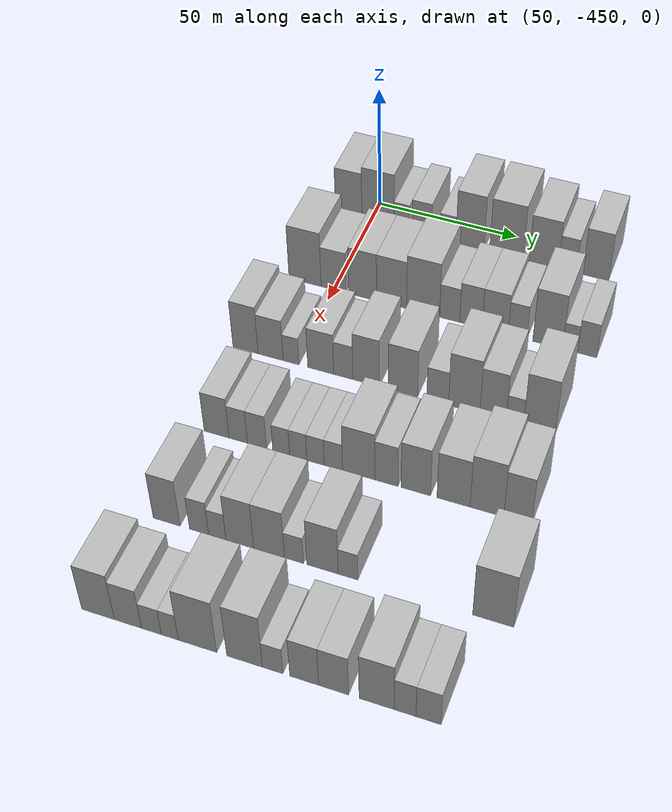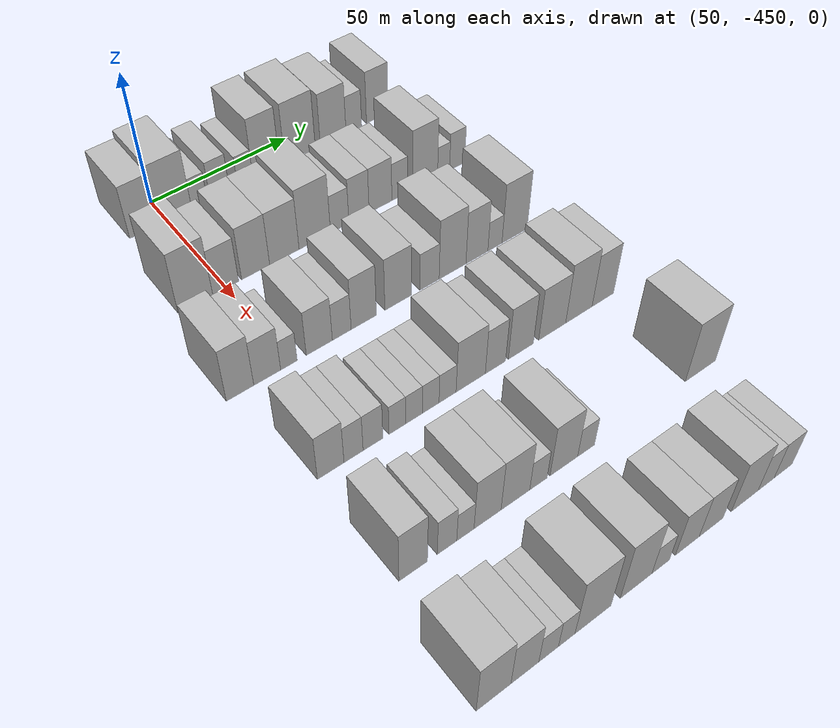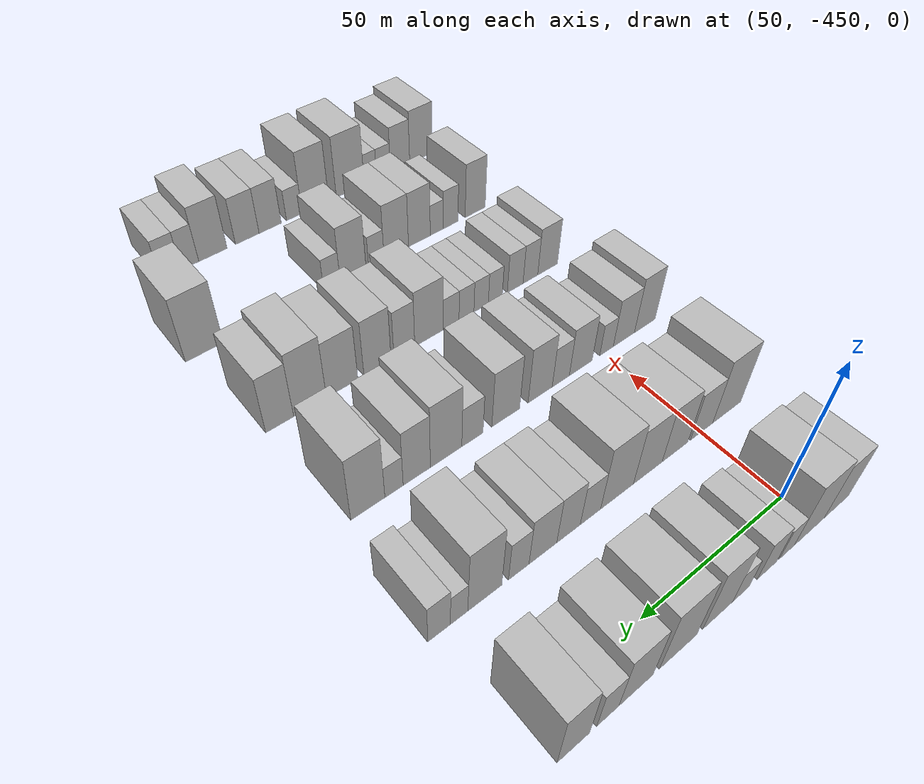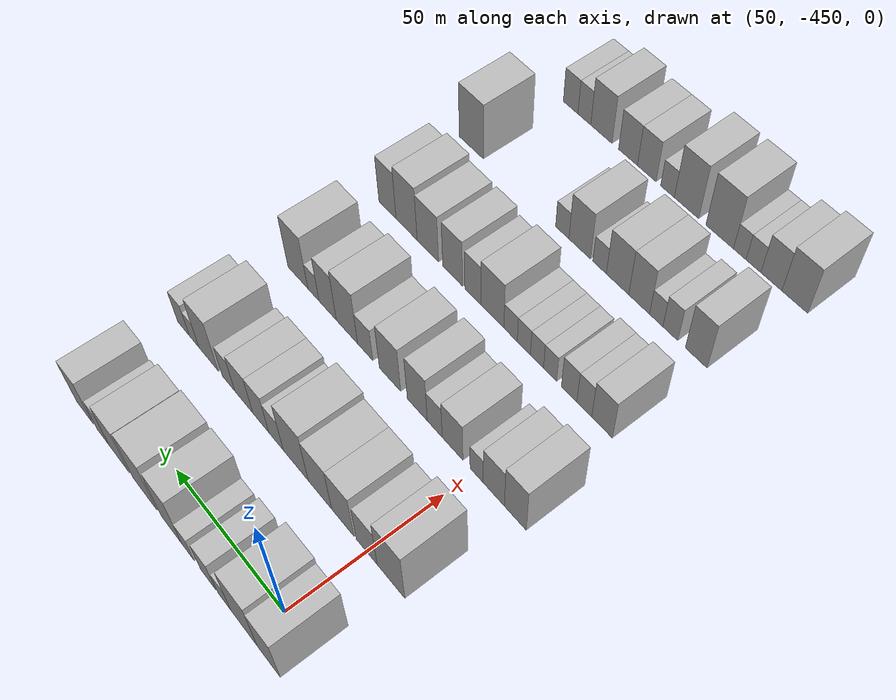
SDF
<sdf version="1.6">
 <world name="default">
  <model name="building_13">
   <static>1</static>
   <pose>50.0000 -457.8716 0 0.000000 0.000000 0.000000</pose>
   <link name="link">
    <pose>0 0 10.50 0 0 0</pose>
    <collision name="collision"><geometry><box><size>20.0000 9.7933 21.0000</size></box></geometry></collision>
    <visual name="visual">
     <cast_shadows>0</cast_shadows>
     <geometry><box><size>20.0000 9.7933 21.0000</size></box></geometry>
     <material>
      <script>
       <uri>model://HANNAS_wall/materials/scripts</uri>
       <uri>model://HANNAS_wall/materials/textures</uri>
       <name>vrc/HANNAS_wall</name>
      </script>
     </material>
    </visual>
   </link>
  </model>
  <model name="building_14">
   <static>1</static>
   <pose>50.0000 -447.1018 0 0.000000 0.000000 0.000000</pose>
   <link name="link">
    <pose>0 0 12.00 0 0 0</pose>
    <collision name="collision"><geometry><box><size>20.0000 11.7461 24.0000</size></box></geometry></collision>
    <visual name="visual">
     <cast_shadows>0</cast_shadows>
     <geometry><box><size>20.0000 11.7461 24.0000</size></box></geometry>
     <material>
      <script>
       <uri>model://HANNAS_wall/materials/scripts</uri>
       <uri>model://HANNAS_wall/materials/textures</uri>
       <name>vrc/HANNAS_wall</name>
      </script>
     </material>
    </visual>
   </link>
  </model>
  <model name="building_15">
   <static>1</static>
   <pose>50.0000 -438.4179 0 0.000000 0.000000 0.000000</pose>
   <link name="link">
    <pose>0 0 6.00 0 0 0</pose>
    <collision name="collision"><geometry><box><size>20.0000 5.6217 12.0000</size></box></geometry></collision>
    <visual name="visual">
     <cast_shadows>0</cast_shadows>
     <geometry><box><size>20.0000 5.6217 12.0000</size></box></geometry>
     <material>
      <script>
       <uri>model://HANNAS_wall/materials/scripts</uri>
       <uri>model://HANNAS_wall/materials/textures</uri>
       <name>vrc/HANNAS_wall</name>
      </script>
     </material>
    </visual>
   </link>
  </model>
  <model name="building_16">
   <static>1</static>
   <pose>50.0000 -431.0832 0 0.000000 0.000000 0.000000</pose>
   <link name="link">
    <pose>0 0 7.50 0 0 0</pose>
    <collision name="collision"><geometry><box><size>20.0000 7.0478 15.0000</size></box></geometry></collision>
    <visual name="visual">
     <cast_shadows>0</cast_shadows>
     <geometry><box><size>20.0000 7.0478 15.0000</size></box></geometry>
     <material>
      <script>
       <uri>model://HANNAS_wall/materials/scripts</uri>
       <uri>model://HANNAS_wall/materials/textures</uri>
       <name>vrc/HANNAS_wall</name>
      </script>
     </material>
    </visual>
   </link>
  </model>
  <model name="building_17">
   <static>1</static>
   <pose>50.0000 -421.6807 0 0.000000 0.000000 0.000000</pose>
   <link name="link">
    <pose>0 0 6.00 0 0 0</pose>
    <collision name="collision"><geometry><box><size>20.0000 5.7572 12.0000</size></box></geometry></collision>
    <visual name="visual">
     <cast_shadows>0</cast_shadows>
     <geometry><box><size>20.0000 5.7572 12.0000</size></box></geometry>
     <material>
      <script>
       <uri>model://HANNAS_wall/materials/scripts</uri>
       <uri>model://HANNAS_wall/materials/textures</uri>
       <name>vrc/HANNAS_wall</name>
      </script>
     </material>
    </visual>
   </link>
  </model>
  <model name="building_18">
   <static>1</static>
   <pose>50.0000 -413.7664 0 0.000000 0.000000 0.000000</pose>
   <link name="link">
    <pose>0 0 12.00 0 0 0</pose>
    <collision name="collision"><geometry><box><size>20.0000 10.0714 24.0000</size></box></geometry></collision>
    <visual name="visual">
     <cast_shadows>0</cast_shadows>
     <geometry><box><size>20.0000 10.0714 24.0000</size></box></geometry>
     <material>
      <script>
       <uri>model://HANNAS_wall/materials/scripts</uri>
       <uri>model://HANNAS_wall/materials/textures</uri>
       <name>vrc/HANNAS_wall</name>
      </script>
     </material>
    </visual>
   </link>
  </model>
  <model name="building_19">
   <static>1</static>
   <pose>50.0000 -400.7920 0 0.000000 0.000000 0.000000</pose>
   <link name="link">
    <pose>0 0 12.00 0 0 0</pose>
    <collision name="collision"><geometry><box><size>20.0000 11.8775 24.0000</size></box></geometry></collision>
    <visual name="visual">
     <cast_shadows>0</cast_shadows>
     <geometry><box><size>20.0000 11.8775 24.0000</size></box></geometry>
     <material>
      <script>
       <uri>model://HANNAS_wall/materials/scripts</uri>
       <uri>model://HANNAS_wall/materials/textures</uri>
       <name>vrc/HANNAS_wall</name>
      </script>
     </material>
    </visual>
   </link>
  </model>
  <model name="building_20">
   <static>1</static>
   <pose>50.0000 -387.7106 0 0.000000 0.000000 0.000000</pose>
   <link name="link">
    <pose>0 0 10.50 0 0 0</pose>
    <collision name="collision"><geometry><box><size>20.0000 10.2854 21.0000</size></box></geometry></collision>
    <visual name="visual">
     <cast_shadows>0</cast_shadows>
     <geometry><box><size>20.0000 10.2854 21.0000</size></box></geometry>
     <material>
      <script>
       <uri>model://HANNAS_wall/materials/scripts</uri>
       <uri>model://HANNAS_wall/materials/textures</uri>
       <name>vrc/HANNAS_wall</name>
      </script>
     </material>
    </visual>
   </link>
  </model>
  <model name="building_21">
   <static>1</static>
   <pose>50.0000 -379.3886 0 0.000000 0.000000 0.000000</pose>
   <link name="link">
    <pose>0 0 7.50 0 0 0</pose>
    <collision name="collision"><geometry><box><size>20.0000 6.3586 15.0000</size></box></geometry></collision>
    <visual name="visual">
     <cast_shadows>0</cast_shadows>
     <geometry><box><size>20.0000 6.3586 15.0000</size></box></geometry>
     <material>
      <script>
       <uri>model://HANNAS_wall/materials/scripts</uri>
       <uri>model://HANNAS_wall/materials/textures</uri>
       <name>vrc/HANNAS_wall</name>
      </script>
     </material>
    </visual>
   </link>
  </model>
  <model name="building_22">
   <static>1</static>
   <pose>50.0000 -369.7194 0 0.000000 0.000000 0.000000</pose>
   <link name="link">
    <pose>0 0 10.50 0 0 0</pose>
    <collision name="collision"><geometry><box><size>20.0000 8.9800 21.0000</size></box></geometry></collision>
    <visual name="visual">
     <cast_shadows>0</cast_shadows>
     <geometry><box><size>20.0000 8.9800 21.0000</size></box></geometry>
     <material>
      <script>
       <uri>model://HANNAS_wall/materials/scripts</uri>
       <uri>model://HANNAS_wall/materials/textures</uri>
       <name>vrc/HANNAS_wall</name>
      </script>
     </material>
    </visual>
   </link>
  </model>
  <model name="building_141">
   <static>1</static>
   <pose>85.0000 -460.1994 0 0.000000 0.000000 0.000000</pose>
   <link name="link">
    <pose>0 0 12.00 0 0 0</pose>
    <collision name="collision"><geometry><box><size>20.0000 11.4522 24.0000</size></box></geometry></collision>
    <visual name="visual">
     <cast_shadows>0</cast_shadows>
     <geometry><box><size>20.0000 11.4522 24.0000</size></box></geometry>
     <material>
      <script>
       <uri>model://HANNAS_wall/materials/scripts</uri>
       <uri>model://HANNAS_wall/materials/textures</uri>
       <name>vrc/HANNAS_wall</name>
      </script>
     </material>
    </visual>
   </link>
  </model>
  <model name="building_142">
   <static>1</static>
   <pose>85.0000 -450.0665 0 0.000000 0.000000 0.000000</pose>
   <link name="link">
    <pose>0 0 9.00 0 0 0</pose>
    <collision name="collision"><geometry><box><size>20.0000 8.8136 18.0000</size></box></geometry></collision>
    <visual name="visual">
     <cast_shadows>0</cast_shadows>
     <geometry><box><size>20.0000 8.8136 18.0000</size></box></geometry>
     <material>
      <script>
       <uri>model://HANNAS_wall/materials/scripts</uri>
       <uri>model://HANNAS_wall/materials/textures</uri>
       <name>vrc/HANNAS_wall</name>
      </script>
     </material>
    </visual>
   </link>
  </model>
  <model name="building_143">
   <static>1</static>
   <pose>85.0000 -439.7883 0 0.000000 0.000000 0.000000</pose>
   <link name="link">
    <pose>0 0 10.50 0 0 0</pose>
    <collision name="collision"><geometry><box><size>20.0000 9.7427 21.0000</size></box></geometry></collision>
    <visual name="visual">
     <cast_shadows>0</cast_shadows>
     <geometry><box><size>20.0000 9.7427 21.0000</size></box></geometry>
     <material>
      <script>
       <uri>model://HANNAS_wall/materials/scripts</uri>
       <uri>model://HANNAS_wall/materials/textures</uri>
       <name>vrc/HANNAS_wall</name>
      </script>
     </material>
    </visual>
   </link>
  </model>
  <model name="building_144">
   <static>1</static>
   <pose>85.0000 -429.6844 0 0.000000 0.000000 0.000000</pose>
   <link name="link">
    <pose>0 0 10.50 0 0 0</pose>
    <collision name="collision"><geometry><box><size>20.0000 10.4652 21.0000</size></box></geometry></collision>
    <visual name="visual">
     <cast_shadows>0</cast_shadows>
     <geometry><box><size>20.0000 10.4652 21.0000</size></box></geometry>
     <material>
      <script>
       <uri>model://HANNAS_wall/materials/scripts</uri>
       <uri>model://HANNAS_wall/materials/textures</uri>
       <name>vrc/HANNAS_wall</name>
      </script>
     </material>
    </visual>
   </link>
  </model>
  <model name="building_145">
   <static>1</static>
   <pose>85.0000 -418.7154 0 0.000000 0.000000 0.000000</pose>
   <link name="link">
    <pose>0 0 12.00 0 0 0</pose>
    <collision name="collision"><geometry><box><size>20.0000 11.4728 24.0000</size></box></geometry></collision>
    <visual name="visual">
     <cast_shadows>0</cast_shadows>
     <geometry><box><size>20.0000 11.4728 24.0000</size></box></geometry>
     <material>
      <script>
       <uri>model://HANNAS_wall/materials/scripts</uri>
       <uri>model://HANNAS_wall/materials/textures</uri>
       <name>vrc/HANNAS_wall</name>
      </script>
     </material>
    </visual>
   </link>
  </model>
  <model name="building_146">
   <static>1</static>
   <pose>85.0000 -409.5506 0 0.000000 0.000000 0.000000</pose>
   <link name="link">
    <pose>0 0 7.50 0 0 0</pose>
    <collision name="collision"><geometry><box><size>20.0000 6.8568 15.0000</size></box></geometry></collision>
    <visual name="visual">
     <cast_shadows>0</cast_shadows>
     <geometry><box><size>20.0000 6.8568 15.0000</size></box></geometry>
     <material>
      <script>
       <uri>model://HANNAS_wall/materials/scripts</uri>
       <uri>model://HANNAS_wall/materials/textures</uri>
       <name>vrc/HANNAS_wall</name>
      </script>
     </material>
    </visual>
   </link>
  </model>
  <model name="building_147">
   <static>1</static>
   <pose>85.0000 -402.2964 0 0.000000 0.000000 0.000000</pose>
   <link name="link">
    <pose>0 0 9.00 0 0 0</pose>
    <collision name="collision"><geometry><box><size>20.0000 7.6515 18.0000</size></box></geometry></collision>
    <visual name="visual">
     <cast_shadows>0</cast_shadows>
     <geometry><box><size>20.0000 7.6515 18.0000</size></box></geometry>
     <material>
      <script>
       <uri>model://HANNAS_wall/materials/scripts</uri>
       <uri>model://HANNAS_wall/materials/textures</uri>
       <name>vrc/HANNAS_wall</name>
      </script>
     </material>
    </visual>
   </link>
  </model>
  <model name="building_148">
   <static>1</static>
   <pose>85.0000 -394.0808 0 0.000000 0.000000 0.000000</pose>
   <link name="link">
    <pose>0 0 9.00 0 0 0</pose>
    <collision name="collision"><geometry><box><size>20.0000 8.7798 18.0000</size></box></geometry></collision>
    <visual name="visual">
     <cast_shadows>0</cast_shadows>
     <geometry><box><size>20.0000 8.7798 18.0000</size></box></geometry>
     <material>
      <script>
       <uri>model://HANNAS_wall/materials/scripts</uri>
       <uri>model://HANNAS_wall/materials/textures</uri>
       <name>vrc/HANNAS_wall</name>
      </script>
     </material>
    </visual>
   </link>
  </model>
  <model name="building_149">
   <static>1</static>
   <pose>85.0000 -386.5686 0 0.000000 0.000000 0.000000</pose>
   <link name="link">
    <pose>0 0 7.50 0 0 0</pose>
    <collision name="collision"><geometry><box><size>20.0000 6.2445 15.0000</size></box></geometry></collision>
    <visual name="visual">
     <cast_shadows>0</cast_shadows>
     <geometry><box><size>20.0000 6.2445 15.0000</size></box></geometry>
     <material>
      <script>
       <uri>model://HANNAS_wall/materials/scripts</uri>
       <uri>model://HANNAS_wall/materials/textures</uri>
       <name>vrc/HANNAS_wall</name>
      </script>
     </material>
    </visual>
   </link>
  </model>
  <model name="building_150">
   <static>1</static>
   <pose>85.0000 -376.4709 0 0.000000 0.000000 0.000000</pose>
   <link name="link">
    <pose>0 0 12.00 0 0 0</pose>
    <collision name="collision"><geometry><box><size>20.0000 9.9509 24.0000</size></box></geometry></collision>
    <visual name="visual">
     <cast_shadows>0</cast_shadows>
     <geometry><box><size>20.0000 9.9509 24.0000</size></box></geometry>
     <material>
      <script>
       <uri>model://HANNAS_wall/materials/scripts</uri>
       <uri>model://HANNAS_wall/materials/textures</uri>
       <name>vrc/HANNAS_wall</name>
      </script>
     </material>
    </visual>
   </link>
  </model>
  <model name="building_151">
   <static>1</static>
   <pose>85.0000 -369.0431 0 0.000000 0.000000 0.000000</pose>
   <link name="link">
    <pose>0 0 6.00 0 0 0</pose>
    <collision name="collision"><geometry><box><size>20.0000 4.9047 12.0000</size></box></geometry></collision>
    <visual name="visual">
     <cast_shadows>0</cast_shadows>
     <geometry><box><size>20.0000 4.9047 12.0000</size></box></geometry>
     <material>
      <script>
       <uri>model://HANNAS_wall/materials/scripts</uri>
       <uri>model://HANNAS_wall/materials/textures</uri>
       <name>vrc/HANNAS_wall</name>
      </script>
     </material>
    </visual>
   </link>
  </model>
  <model name="building_152">
   <static>1</static>
   <pose>85.0000 -363.4586 0 0.000000 0.000000 0.000000</pose>
   <link name="link">
    <pose>0 0 7.50 0 0 0</pose>
    <collision name="collision"><geometry><box><size>20.0000 6.2641 15.0000</size></box></geometry></collision>
    <visual name="visual">
     <cast_shadows>0</cast_shadows>
     <geometry><box><size>20.0000 6.2641 15.0000</size></box></geometry>
     <material>
      <script>
       <uri>model://HANNAS_wall/materials/scripts</uri>
       <uri>model://HANNAS_wall/materials/textures</uri>
       <name>vrc/HANNAS_wall</name>
      </script>
     </material>
    </visual>
   </link>
  </model>
  <model name="building_268">
   <static>1</static>
   <pose>120.0000 -466.7223 0 0.000000 0.000000 0.000000</pose>
   <link name="link">
    <pose>0 0 10.50 0 0 0</pose>
    <collision name="collision"><geometry><box><size>20.0000 8.6788 21.0000</size></box></geometry></collision>
    <visual name="visual">
     <cast_shadows>0</cast_shadows>
     <geometry><box><size>20.0000 8.6788 21.0000</size></box></geometry>
     <material>
      <script>
       <uri>model://HANNAS_wall/materials/scripts</uri>
       <uri>model://HANNAS_wall/materials/textures</uri>
       <name>vrc/HANNAS_wall</name>
      </script>
     </material>
    </visual>
   </link>
  </model>
  <model name="building_269">
   <static>1</static>
   <pose>120.0000 -458.0558 0 0.000000 0.000000 0.000000</pose>
   <link name="link">
    <pose>0 0 9.00 0 0 0</pose>
    <collision name="collision"><geometry><box><size>20.0000 8.6541 18.0000</size></box></geometry></collision>
    <visual name="visual">
     <cast_shadows>0</cast_shadows>
     <geometry><box><size>20.0000 8.6541 18.0000</size></box></geometry>
     <material>
      <script>
       <uri>model://HANNAS_wall/materials/scripts</uri>
       <uri>model://HANNAS_wall/materials/textures</uri>
       <name>vrc/HANNAS_wall</name>
      </script>
     </material>
    </visual>
   </link>
  </model>
  <model name="building_270">
   <static>1</static>
   <pose>120.0000 -451.0318 0 0.000000 0.000000 0.000000</pose>
   <link name="link">
    <pose>0 0 6.00 0 0 0</pose>
    <collision name="collision"><geometry><box><size>20.0000 5.3940 12.0000</size></box></geometry></collision>
    <visual name="visual">
     <cast_shadows>0</cast_shadows>
     <geometry><box><size>20.0000 5.3940 12.0000</size></box></geometry>
     <material>
      <script>
       <uri>model://HANNAS_wall/materials/scripts</uri>
       <uri>model://HANNAS_wall/materials/textures</uri>
       <name>vrc/HANNAS_wall</name>
      </script>
     </material>
    </visual>
   </link>
  </model>
  <model name="building_271">
   <static>1</static>
   <pose>120.0000 -440.9353 0 0.000000 0.000000 0.000000</pose>
   <link name="link">
    <pose>0 0 9.00 0 0 0</pose>
    <collision name="collision"><geometry><box><size>20.0000 8.7991 18.0000</size></box></geometry></collision>
    <visual name="visual">
     <cast_shadows>0</cast_shadows>
     <geometry><box><size>20.0000 8.7991 18.0000</size></box></geometry>
     <material>
      <script>
       <uri>model://HANNAS_wall/materials/scripts</uri>
       <uri>model://HANNAS_wall/materials/textures</uri>
       <name>vrc/HANNAS_wall</name>
      </script>
     </material>
    </visual>
   </link>
  </model>
  <model name="building_272">
   <static>1</static>
   <pose>120.0000 -433.3121 0 0.000000 0.000000 0.000000</pose>
   <link name="link">
    <pose>0 0 7.50 0 0 0</pose>
    <collision name="collision"><geometry><box><size>20.0000 6.4473 15.0000</size></box></geometry></collision>
    <visual name="visual">
     <cast_shadows>0</cast_shadows>
     <geometry><box><size>20.0000 6.4473 15.0000</size></box></geometry>
     <material>
      <script>
       <uri>model://HANNAS_wall/materials/scripts</uri>
       <uri>model://HANNAS_wall/materials/textures</uri>
       <name>vrc/HANNAS_wall</name>
      </script>
     </material>
    </visual>
   </link>
  </model>
  <model name="building_273">
   <static>1</static>
   <pose>120.0000 -425.6830 0 0.000000 0.000000 0.000000</pose>
   <link name="link">
    <pose>0 0 10.50 0 0 0</pose>
    <collision name="collision"><geometry><box><size>20.0000 8.8109 21.0000</size></box></geometry></collision>
    <visual name="visual">
     <cast_shadows>0</cast_shadows>
     <geometry><box><size>20.0000 8.8109 21.0000</size></box></geometry>
     <material>
      <script>
       <uri>model://HANNAS_wall/materials/scripts</uri>
       <uri>model://HANNAS_wall/materials/textures</uri>
       <name>vrc/HANNAS_wall</name>
      </script>
     </material>
    </visual>
   </link>
  </model>
  <model name="building_274">
   <static>1</static>
   <pose>120.0000 -413.4282 0 0.000000 0.000000 0.000000</pose>
   <link name="link">
    <pose>0 0 10.50 0 0 0</pose>
    <collision name="collision"><geometry><box><size>20.0000 9.6988 21.0000</size></box></geometry></collision>
    <visual name="visual">
     <cast_shadows>0</cast_shadows>
     <geometry><box><size>20.0000 9.6988 21.0000</size></box></geometry>
     <material>
      <script>
       <uri>model://HANNAS_wall/materials/scripts</uri>
       <uri>model://HANNAS_wall/materials/textures</uri>
       <name>vrc/HANNAS_wall</name>
      </script>
     </material>
    </visual>
   </link>
  </model>
  <model name="building_275">
   <static>1</static>
   <pose>120.0000 -402.0320 0 0.000000 0.000000 0.000000</pose>
   <link name="link">
    <pose>0 0 7.50 0 0 0</pose>
    <collision name="collision"><geometry><box><size>20.0000 7.0936 15.0000</size></box></geometry></collision>
    <visual name="visual">
     <cast_shadows>0</cast_shadows>
     <geometry><box><size>20.0000 7.0936 15.0000</size></box></geometry>
     <material>
      <script>
       <uri>model://HANNAS_wall/materials/scripts</uri>
       <uri>model://HANNAS_wall/materials/textures</uri>
       <name>vrc/HANNAS_wall</name>
      </script>
     </material>
    </visual>
   </link>
  </model>
  <model name="building_276">
   <static>1</static>
   <pose>120.0000 -393.4062 0 0.000000 0.000000 0.000000</pose>
   <link name="link">
    <pose>0 0 12.00 0 0 0</pose>
    <collision name="collision"><geometry><box><size>20.0000 10.1579 24.0000</size></box></geometry></collision>
    <visual name="visual">
     <cast_shadows>0</cast_shadows>
     <geometry><box><size>20.0000 10.1579 24.0000</size></box></geometry>
     <material>
      <script>
       <uri>model://HANNAS_wall/materials/scripts</uri>
       <uri>model://HANNAS_wall/materials/textures</uri>
       <name>vrc/HANNAS_wall</name>
      </script>
     </material>
    </visual>
   </link>
  </model>
  <model name="building_277">
   <static>1</static>
   <pose>120.0000 -384.0932 0 0.000000 0.000000 0.000000</pose>
   <link name="link">
    <pose>0 0 10.50 0 0 0</pose>
    <collision name="collision"><geometry><box><size>20.0000 8.4682 21.0000</size></box></geometry></collision>
    <visual name="visual">
     <cast_shadows>0</cast_shadows>
     <geometry><box><size>20.0000 8.4682 21.0000</size></box></geometry>
     <material>
      <script>
       <uri>model://HANNAS_wall/materials/scripts</uri>
       <uri>model://HANNAS_wall/materials/textures</uri>
       <name>vrc/HANNAS_wall</name>
      </script>
     </material>
    </visual>
   </link>
  </model>
  <model name="building_278">
   <static>1</static>
   <pose>120.0000 -377.0903 0 0.000000 0.000000 0.000000</pose>
   <link name="link">
    <pose>0 0 6.00 0 0 0</pose>
    <collision name="collision"><geometry><box><size>20.0000 5.5376 12.0000</size></box></geometry></collision>
    <visual name="visual">
     <cast_shadows>0</cast_shadows>
     <geometry><box><size>20.0000 5.5376 12.0000</size></box></geometry>
     <material>
      <script>
       <uri>model://HANNAS_wall/materials/scripts</uri>
       <uri>model://HANNAS_wall/materials/textures</uri>
       <name>vrc/HANNAS_wall</name>
      </script>
     </material>
    </visual>
   </link>
  </model>
  <model name="building_279">
   <static>1</static>
   <pose>120.0000 -369.2948 0 0.000000 0.000000 0.000000</pose>
   <link name="link">
    <pose>0 0 12.00 0 0 0</pose>
    <collision name="collision"><geometry><box><size>20.0000 10.0533 24.0000</size></box></geometry></collision>
    <visual name="visual">
     <cast_shadows>0</cast_shadows>
     <geometry><box><size>20.0000 10.0533 24.0000</size></box></geometry>
     <material>
      <script>
       <uri>model://HANNAS_wall/materials/scripts</uri>
       <uri>model://HANNAS_wall/materials/textures</uri>
       <name>vrc/HANNAS_wall</name>
      </script>
     </material>
    </visual>
   </link>
  </model>
  <model name="building_394">
   <static>1</static>
   <pose>155.0000 -461.2641 0 0.000000 0.000000 0.000000</pose>
   <link name="link">
    <pose>0 0 9.00 0 0 0</pose>
    <collision name="collision"><geometry><box><size>20.0000 8.2466 18.0000</size></box></geometry></collision>
    <visual name="visual">
     <cast_shadows>0</cast_shadows>
     <geometry><box><size>20.0000 8.2466 18.0000</size></box></geometry>
     <material>
      <script>
       <uri>model://HANNAS_wall/materials/scripts</uri>
       <uri>model://HANNAS_wall/materials/textures</uri>
       <name>vrc/HANNAS_wall</name>
      </script>
     </material>
    </visual>
   </link>
  </model>
  <model name="building_395">
   <static>1</static>
   <pose>155.0000 -454.1316 0 0.000000 0.000000 0.000000</pose>
   <link name="link">
    <pose>0 0 7.50 0 0 0</pose>
    <collision name="collision"><geometry><box><size>20.0000 6.0183 15.0000</size></box></geometry></collision>
    <visual name="visual">
     <cast_shadows>0</cast_shadows>
     <geometry><box><size>20.0000 6.0183 15.0000</size></box></geometry>
     <material>
      <script>
       <uri>model://HANNAS_wall/materials/scripts</uri>
       <uri>model://HANNAS_wall/materials/textures</uri>
       <name>vrc/HANNAS_wall</name>
      </script>
     </material>
    </visual>
   </link>
  </model>
  <model name="building_396">
   <static>1</static>
   <pose>155.0000 -447.9561 0 0.000000 0.000000 0.000000</pose>
   <link name="link">
    <pose>0 0 7.50 0 0 0</pose>
    <collision name="collision"><geometry><box><size>20.0000 6.3326 15.0000</size></box></geometry></collision>
    <visual name="visual">
     <cast_shadows>0</cast_shadows>
     <geometry><box><size>20.0000 6.3326 15.0000</size></box></geometry>
     <material>
      <script>
       <uri>model://HANNAS_wall/materials/scripts</uri>
       <uri>model://HANNAS_wall/materials/textures</uri>
       <name>vrc/HANNAS_wall</name>
      </script>
     </material>
    </visual>
   </link>
  </model>
  <model name="building_397">
   <static>1</static>
   <pose>155.0000 -440.0539 0 0.000000 0.000000 0.000000</pose>
   <link name="link">
    <pose>0 0 6.00 0 0 0</pose>
    <collision name="collision"><geometry><box><size>20.0000 5.4719 12.0000</size></box></geometry></collision>
    <visual name="visual">
     <cast_shadows>0</cast_shadows>
     <geometry><box><size>20.0000 5.4719 12.0000</size></box></geometry>
     <material>
      <script>
       <uri>model://HANNAS_wall/materials/scripts</uri>
       <uri>model://HANNAS_wall/materials/textures</uri>
       <name>vrc/HANNAS_wall</name>
      </script>
     </material>
    </visual>
   </link>
  </model>
  <model name="building_398">
   <static>1</static>
   <pose>155.0000 -434.5437 0 0.000000 0.000000 0.000000</pose>
   <link name="link">
    <pose>0 0 6.00 0 0 0</pose>
    <collision name="collision"><geometry><box><size>20.0000 5.5483 12.0000</size></box></geometry></collision>
    <visual name="visual">
     <cast_shadows>0</cast_shadows>
     <geometry><box><size>20.0000 5.5483 12.0000</size></box></geometry>
     <material>
      <script>
       <uri>model://HANNAS_wall/materials/scripts</uri>
       <uri>model://HANNAS_wall/materials/textures</uri>
       <name>vrc/HANNAS_wall</name>
      </script>
     </material>
    </visual>
   </link>
  </model>
  <model name="building_399">
   <static>1</static>
   <pose>155.0000 -428.9481 0 0.000000 0.000000 0.000000</pose>
   <link name="link">
    <pose>0 0 6.00 0 0 0</pose>
    <collision name="collision"><geometry><box><size>20.0000 5.6429 12.0000</size></box></geometry></collision>
    <visual name="visual">
     <cast_shadows>0</cast_shadows>
     <geometry><box><size>20.0000 5.6429 12.0000</size></box></geometry>
     <material>
      <script>
       <uri>model://HANNAS_wall/materials/scripts</uri>
       <uri>model://HANNAS_wall/materials/textures</uri>
       <name>vrc/HANNAS_wall</name>
      </script>
     </material>
    </visual>
   </link>
  </model>
  <model name="building_400">
   <static>1</static>
   <pose>155.0000 -423.2051 0 0.000000 0.000000 0.000000</pose>
   <link name="link">
    <pose>0 0 6.00 0 0 0</pose>
    <collision name="collision"><geometry><box><size>20.0000 5.8431 12.0000</size></box></geometry></collision>
    <visual name="visual">
     <cast_shadows>0</cast_shadows>
     <geometry><box><size>20.0000 5.8431 12.0000</size></box></geometry>
     <material>
      <script>
       <uri>model://HANNAS_wall/materials/scripts</uri>
       <uri>model://HANNAS_wall/materials/textures</uri>
       <name>vrc/HANNAS_wall</name>
      </script>
     </material>
    </visual>
   </link>
  </model>
  <model name="building_401">
   <static>1</static>
   <pose>155.0000 -415.1552 0 0.000000 0.000000 0.000000</pose>
   <link name="link">
    <pose>0 0 10.50 0 0 0</pose>
    <collision name="collision"><geometry><box><size>20.0000 10.2568 21.0000</size></box></geometry></collision>
    <visual name="visual">
     <cast_shadows>0</cast_shadows>
     <geometry><box><size>20.0000 10.2568 21.0000</size></box></geometry>
     <material>
      <script>
       <uri>model://HANNAS_wall/materials/scripts</uri>
       <uri>model://HANNAS_wall/materials/textures</uri>
       <name>vrc/HANNAS_wall</name>
      </script>
     </material>
    </visual>
   </link>
  </model>
  <model name="building_402">
   <static>1</static>
   <pose>155.0000 -406.3943 0 0.000000 0.000000 0.000000</pose>
   <link name="link">
    <pose>0 0 9.00 0 0 0</pose>
    <collision name="collision"><geometry><box><size>20.0000 7.2649 18.0000</size></box></geometry></collision>
    <visual name="visual">
     <cast_shadows>0</cast_shadows>
     <geometry><box><size>20.0000 7.2649 18.0000</size></box></geometry>
     <material>
      <script>
       <uri>model://HANNAS_wall/materials/scripts</uri>
       <uri>model://HANNAS_wall/materials/textures</uri>
       <name>vrc/HANNAS_wall</name>
      </script>
     </material>
    </visual>
   </link>
  </model>
  <model name="building_403">
   <static>1</static>
   <pose>155.0000 -397.1675 0 0.000000 0.000000 0.000000</pose>
   <link name="link">
    <pose>0 0 10.50 0 0 0</pose>
    <collision name="collision"><geometry><box><size>20.0000 9.1889 21.0000</size></box></geometry></collision>
    <visual name="visual">
     <cast_shadows>0</cast_shadows>
     <geometry><box><size>20.0000 9.1889 21.0000</size></box></geometry>
     <material>
      <script>
       <uri>model://HANNAS_wall/materials/scripts</uri>
       <uri>model://HANNAS_wall/materials/textures</uri>
       <name>vrc/HANNAS_wall</name>
      </script>
     </material>
    </visual>
   </link>
  </model>
  <model name="building_404">
   <static>1</static>
   <pose>155.0000 -385.4697 0 0.000000 0.000000 0.000000</pose>
   <link name="link">
    <pose>0 0 10.50 0 0 0</pose>
    <collision name="collision"><geometry><box><size>20.0000 10.2068 21.0000</size></box></geometry></collision>
    <visual name="visual">
     <cast_shadows>0</cast_shadows>
     <geometry><box><size>20.0000 10.2068 21.0000</size></box></geometry>
     <material>
      <script>
       <uri>model://HANNAS_wall/materials/scripts</uri>
       <uri>model://HANNAS_wall/materials/textures</uri>
       <name>vrc/HANNAS_wall</name>
      </script>
     </material>
    </visual>
   </link>
  </model>
  <model name="building_405">
   <static>1</static>
   <pose>155.0000 -375.2336 0 0.000000 0.000000 0.000000</pose>
   <link name="link">
    <pose>0 0 12.00 0 0 0</pose>
    <collision name="collision"><geometry><box><size>20.0000 10.2653 24.0000</size></box></geometry></collision>
    <visual name="visual">
     <cast_shadows>0</cast_shadows>
     <geometry><box><size>20.0000 10.2653 24.0000</size></box></geometry>
     <material>
      <script>
       <uri>model://HANNAS_wall/materials/scripts</uri>
       <uri>model://HANNAS_wall/materials/textures</uri>
       <name>vrc/HANNAS_wall</name>
      </script>
     </material>
    </visual>
   </link>
  </model>
  <model name="building_406">
   <static>1</static>
   <pose>155.0000 -365.8576 0 0.000000 0.000000 0.000000</pose>
   <link name="link">
    <pose>0 0 10.50 0 0 0</pose>
    <collision name="collision"><geometry><box><size>20.0000 8.4866 21.0000</size></box></geometry></collision>
    <visual name="visual">
     <cast_shadows>0</cast_shadows>
     <geometry><box><size>20.0000 8.4866 21.0000</size></box></geometry>
     <material>
      <script>
       <uri>model://HANNAS_wall/materials/scripts</uri>
       <uri>model://HANNAS_wall/materials/textures</uri>
       <name>vrc/HANNAS_wall</name>
      </script>
     </material>
    </visual>
   </link>
  </model>
  <model name="building_518">
   <static>1</static>
   <pose>190.0000 -461.5701 0 0.000000 0.000000 0.000000</pose>
   <link name="link">
    <pose>0 0 10.50 0 0 0</pose>
    <collision name="collision"><geometry><box><size>20.0000 8.5688 21.0000</size></box></geometry></collision>
    <visual name="visual">
     <cast_shadows>0</cast_shadows>
     <geometry><box><size>20.0000 8.5688 21.0000</size></box></geometry>
     <material>
      <script>
       <uri>model://HANNAS_wall/materials/scripts</uri>
       <uri>model://HANNAS_wall/materials/textures</uri>
       <name>vrc/HANNAS_wall</name>
      </script>
     </material>
    </visual>
   </link>
  </model>
  <model name="building_519">
   <static>1</static>
   <pose>190.0000 -451.2682 0 0.000000 0.000000 0.000000</pose>
   <link name="link">
    <pose>0 0 7.50 0 0 0</pose>
    <collision name="collision"><geometry><box><size>20.0000 6.0349 15.0000</size></box></geometry></collision>
    <visual name="visual">
     <cast_shadows>0</cast_shadows>
     <geometry><box><size>20.0000 6.0349 15.0000</size></box></geometry>
     <material>
      <script>
       <uri>model://HANNAS_wall/materials/scripts</uri>
       <uri>model://HANNAS_wall/materials/textures</uri>
       <name>vrc/HANNAS_wall</name>
      </script>
     </material>
    </visual>
   </link>
  </model>
  <model name="building_520">
   <static>1</static>
   <pose>190.0000 -445.5391 0 0.000000 0.000000 0.000000</pose>
   <link name="link">
    <pose>0 0 6.00 0 0 0</pose>
    <collision name="collision"><geometry><box><size>20.0000 5.4234 12.0000</size></box></geometry></collision>
    <visual name="visual">
     <cast_shadows>0</cast_shadows>
     <geometry><box><size>20.0000 5.4234 12.0000</size></box></geometry>
     <material>
      <script>
       <uri>model://HANNAS_wall/materials/scripts</uri>
       <uri>model://HANNAS_wall/materials/textures</uri>
       <name>vrc/HANNAS_wall</name>
      </script>
     </material>
    </visual>
   </link>
  </model>
  <model name="building_521">
   <static>1</static>
   <pose>190.0000 -438.4844 0 0.000000 0.000000 0.000000</pose>
   <link name="link">
    <pose>0 0 10.50 0 0 0</pose>
    <collision name="collision"><geometry><box><size>20.0000 8.6859 21.0000</size></box></geometry></collision>
    <visual name="visual">
     <cast_shadows>0</cast_shadows>
     <geometry><box><size>20.0000 8.6859 21.0000</size></box></geometry>
     <material>
      <script>
       <uri>model://HANNAS_wall/materials/scripts</uri>
       <uri>model://HANNAS_wall/materials/textures</uri>
       <name>vrc/HANNAS_wall</name>
      </script>
     </material>
    </visual>
   </link>
  </model>
  <model name="building_522">
   <static>1</static>
   <pose>190.0000 -429.4037 0 0.000000 0.000000 0.000000</pose>
   <link name="link">
    <pose>0 0 10.50 0 0 0</pose>
    <collision name="collision"><geometry><box><size>20.0000 9.4756 21.0000</size></box></geometry></collision>
    <visual name="visual">
     <cast_shadows>0</cast_shadows>
     <geometry><box><size>20.0000 9.4756 21.0000</size></box></geometry>
     <material>
      <script>
       <uri>model://HANNAS_wall/materials/scripts</uri>
       <uri>model://HANNAS_wall/materials/textures</uri>
       <name>vrc/HANNAS_wall</name>
      </script>
     </material>
    </visual>
   </link>
  </model>
  <model name="building_523">
   <static>1</static>
   <pose>190.0000 -421.7425 0 0.000000 0.000000 0.000000</pose>
   <link name="link">
    <pose>0 0 6.00 0 0 0</pose>
    <collision name="collision"><geometry><box><size>20.0000 5.8467 12.0000</size></box></geometry></collision>
    <visual name="visual">
     <cast_shadows>0</cast_shadows>
     <geometry><box><size>20.0000 5.8467 12.0000</size></box></geometry>
     <material>
      <script>
       <uri>model://HANNAS_wall/materials/scripts</uri>
       <uri>model://HANNAS_wall/materials/textures</uri>
       <name>vrc/HANNAS_wall</name>
      </script>
     </material>
    </visual>
   </link>
  </model>
  <model name="building_524">
   <static>1</static>
   <pose>190.0000 -413.0621 0 0.000000 0.000000 0.000000</pose>
   <link name="link">
    <pose>0 0 10.50 0 0 0</pose>
    <collision name="collision"><geometry><box><size>20.0000 9.5142 21.0000</size></box></geometry></collision>
    <visual name="visual">
     <cast_shadows>0</cast_shadows>
     <geometry><box><size>20.0000 9.5142 21.0000</size></box></geometry>
     <material>
      <script>
       <uri>model://HANNAS_wall/materials/scripts</uri>
       <uri>model://HANNAS_wall/materials/textures</uri>
       <name>vrc/HANNAS_wall</name>
      </script>
     </material>
    </visual>
   </link>
  </model>
  <model name="building_525">
   <static>1</static>
   <pose>190.0000 -405.3374 0 0.000000 0.000000 0.000000</pose>
   <link name="link">
    <pose>0 0 6.00 0 0 0</pose>
    <collision name="collision"><geometry><box><size>20.0000 5.9353 12.0000</size></box></geometry></collision>
    <visual name="visual">
     <cast_shadows>0</cast_shadows>
     <geometry><box><size>20.0000 5.9353 12.0000</size></box></geometry>
     <material>
      <script>
       <uri>model://HANNAS_wall/materials/scripts</uri>
       <uri>model://HANNAS_wall/materials/textures</uri>
       <name>vrc/HANNAS_wall</name>
      </script>
     </material>
    </visual>
   </link>
  </model>
  <model name="building_526">
   <static>1</static>
   <pose>190.0000 -362.5958 0 0.000000 0.000000 0.000000</pose>
   <link name="link">
    <pose>0 0 12.00 0 0 0</pose>
    <collision name="collision"><geometry><box><size>20.0000 11.8493 24.0000</size></box></geometry></collision>
    <visual name="visual">
     <cast_shadows>0</cast_shadows>
     <geometry><box><size>20.0000 11.8493 24.0000</size></box></geometry>
     <material>
      <script>
       <uri>model://HANNAS_wall/materials/scripts</uri>
       <uri>model://HANNAS_wall/materials/textures</uri>
       <name>vrc/HANNAS_wall</name>
      </script>
     </material>
    </visual>
   </link>
  </model>
  <model name="building_641">
   <static>1</static>
   <pose>225.0000 -465.9938 0 0.000000 0.000000 0.000000</pose>
   <link name="link">
    <pose>0 0 10.50 0 0 0</pose>
    <collision name="collision"><geometry><box><size>20.0000 10.0164 21.0000</size></box></geometry></collision>
    <visual name="visual">
     <cast_shadows>0</cast_shadows>
     <geometry><box><size>20.0000 10.0164 21.0000</size></box></geometry>
     <material>
      <script>
       <uri>model://HANNAS_wall/materials/scripts</uri>
       <uri>model://HANNAS_wall/materials/textures</uri>
       <name>vrc/HANNAS_wall</name>
      </script>
     </material>
    </visual>
   </link>
  </model>
  <model name="building_642">
   <static>1</static>
   <pose>225.0000 -456.8442 0 0.000000 0.000000 0.000000</pose>
   <link name="link">
    <pose>0 0 9.00 0 0 0</pose>
    <collision name="collision"><geometry><box><size>20.0000 8.2829 18.0000</size></box></geometry></collision>
    <visual name="visual">
     <cast_shadows>0</cast_shadows>
     <geometry><box><size>20.0000 8.2829 18.0000</size></box></geometry>
     <material>
      <script>
       <uri>model://HANNAS_wall/materials/scripts</uri>
       <uri>model://HANNAS_wall/materials/textures</uri>
       <name>vrc/HANNAS_wall</name>
      </script>
     </material>
    </visual>
   </link>
  </model>
  <model name="building_643">
   <static>1</static>
   <pose>225.0000 -449.7284 0 0.000000 0.000000 0.000000</pose>
   <link name="link">
    <pose>0 0 6.00 0 0 0</pose>
    <collision name="collision"><geometry><box><size>20.0000 5.9487 12.0000</size></box></geometry></collision>
    <visual name="visual">
     <cast_shadows>0</cast_shadows>
     <geometry><box><size>20.0000 5.9487 12.0000</size></box></geometry>
     <material>
      <script>
       <uri>model://HANNAS_wall/materials/scripts</uri>
       <uri>model://HANNAS_wall/materials/textures</uri>
       <name>vrc/HANNAS_wall</name>
      </script>
     </material>
    </visual>
   </link>
  </model>
  <model name="building_644">
   <static>1</static>
   <pose>225.0000 -444.1958 0 0.000000 0.000000 0.000000</pose>
   <link name="link">
    <pose>0 0 6.00 0 0 0</pose>
    <collision name="collision"><geometry><box><size>20.0000 5.1165 12.0000</size></box></geometry></collision>
    <visual name="visual">
     <cast_shadows>0</cast_shadows>
     <geometry><box><size>20.0000 5.1165 12.0000</size></box></geometry>
     <material>
      <script>
       <uri>model://HANNAS_wall/materials/scripts</uri>
       <uri>model://HANNAS_wall/materials/textures</uri>
       <name>vrc/HANNAS_wall</name>
      </script>
     </material>
    </visual>
   </link>
  </model>
  <model name="building_645">
   <static>1</static>
   <pose>225.0000 -435.9252 0 0.000000 0.000000 0.000000</pose>
   <link name="link">
    <pose>0 0 12.00 0 0 0</pose>
    <collision name="collision"><geometry><box><size>20.0000 11.4247 24.0000</size></box></geometry></collision>
    <visual name="visual">
     <cast_shadows>0</cast_shadows>
     <geometry><box><size>20.0000 11.4247 24.0000</size></box></geometry>
     <material>
      <script>
       <uri>model://HANNAS_wall/materials/scripts</uri>
       <uri>model://HANNAS_wall/materials/textures</uri>
       <name>vrc/HANNAS_wall</name>
      </script>
     </material>
    </visual>
   </link>
  </model>
  <model name="building_646">
   <static>1</static>
   <pose>225.0000 -421.9942 0 0.000000 0.000000 0.000000</pose>
   <link name="link">
    <pose>0 0 12.00 0 0 0</pose>
    <collision name="collision"><geometry><box><size>20.0000 10.4373 24.0000</size></box></geometry></collision>
    <visual name="visual">
     <cast_shadows>0</cast_shadows>
     <geometry><box><size>20.0000 10.4373 24.0000</size></box></geometry>
     <material>
      <script>
       <uri>model://HANNAS_wall/materials/scripts</uri>
       <uri>model://HANNAS_wall/materials/textures</uri>
       <name>vrc/HANNAS_wall</name>
      </script>
     </material>
    </visual>
   </link>
  </model>
  <model name="building_647">
   <static>1</static>
   <pose>225.0000 -413.7933 0 0.000000 0.000000 0.000000</pose>
   <link name="link">
    <pose>0 0 6.00 0 0 0</pose>
    <collision name="collision"><geometry><box><size>20.0000 5.9646 12.0000</size></box></geometry></collision>
    <visual name="visual">
     <cast_shadows>0</cast_shadows>
     <geometry><box><size>20.0000 5.9646 12.0000</size></box></geometry>
     <material>
      <script>
       <uri>model://HANNAS_wall/materials/scripts</uri>
       <uri>model://HANNAS_wall/materials/textures</uri>
       <name>vrc/HANNAS_wall</name>
      </script>
     </material>
    </visual>
   </link>
  </model>
  <model name="building_648">
   <static>1</static>
   <pose>225.0000 -404.6728 0 0.000000 0.000000 0.000000</pose>
   <link name="link">
    <pose>0 0 9.00 0 0 0</pose>
    <collision name="collision"><geometry><box><size>20.0000 8.2763 18.0000</size></box></geometry></collision>
    <visual name="visual">
     <cast_shadows>0</cast_shadows>
     <geometry><box><size>20.0000 8.2763 18.0000</size></box></geometry>
     <material>
      <script>
       <uri>model://HANNAS_wall/materials/scripts</uri>
       <uri>model://HANNAS_wall/materials/textures</uri>
       <name>vrc/HANNAS_wall</name>
      </script>
     </material>
    </visual>
   </link>
  </model>
  <model name="building_649">
   <static>1</static>
   <pose>225.0000 -396.2634 0 0.000000 0.000000 0.000000</pose>
   <link name="link">
    <pose>0 0 9.00 0 0 0</pose>
    <collision name="collision"><geometry><box><size>20.0000 8.5426 18.0000</size></box></geometry></collision>
    <visual name="visual">
     <cast_shadows>0</cast_shadows>
     <geometry><box><size>20.0000 8.5426 18.0000</size></box></geometry>
     <material>
      <script>
       <uri>model://HANNAS_wall/materials/scripts</uri>
       <uri>model://HANNAS_wall/materials/textures</uri>
       <name>vrc/HANNAS_wall</name>
      </script>
     </material>
    </visual>
   </link>
  </model>
  <model name="building_650">
   <static>1</static>
   <pose>225.0000 -384.0573 0 0.000000 0.000000 0.000000</pose>
   <link name="link">
    <pose>0 0 10.50 0 0 0</pose>
    <collision name="collision"><geometry><box><size>20.0000 9.8695 21.0000</size></box></geometry></collision>
    <visual name="visual">
     <cast_shadows>0</cast_shadows>
     <geometry><box><size>20.0000 9.8695 21.0000</size></box></geometry>
     <material>
      <script>
       <uri>model://HANNAS_wall/materials/scripts</uri>
       <uri>model://HANNAS_wall/materials/textures</uri>
       <name>vrc/HANNAS_wall</name>
      </script>
     </material>
    </visual>
   </link>
  </model>
  <model name="building_651">
   <static>1</static>
   <pose>225.0000 -376.0983 0 0.000000 0.000000 0.000000</pose>
   <link name="link">
    <pose>0 0 7.50 0 0 0</pose>
    <collision name="collision"><geometry><box><size>20.0000 6.0485 15.0000</size></box></geometry></collision>
    <visual name="visual">
     <cast_shadows>0</cast_shadows>
     <geometry><box><size>20.0000 6.0485 15.0000</size></box></geometry>
     <material>
      <script>
       <uri>model://HANNAS_wall/materials/scripts</uri>
       <uri>model://HANNAS_wall/materials/textures</uri>
       <name>vrc/HANNAS_wall</name>
      </script>
     </material>
    </visual>
   </link>
  </model>
  <model name="building_652">
   <static>1</static>
   <pose>225.0000 -369.5997 0 0.000000 0.000000 0.000000</pose>
   <link name="link">
    <pose>0 0 7.50 0 0 0</pose>
    <collision name="collision"><geometry><box><size>20.0000 6.9486 15.0000</size></box></geometry></collision>
    <visual name="visual">
     <cast_shadows>0</cast_shadows>
     <geometry><box><size>20.0000 6.9486 15.0000</size></box></geometry>
     <material>
      <script>
       <uri>model://HANNAS_wall/materials/scripts</uri>
       <uri>model://HANNAS_wall/materials/textures</uri>
       <name>vrc/HANNAS_wall</name>
      </script>
     </material>
    </visual>
   </link>
  </model>
 </world>
</sdf>
